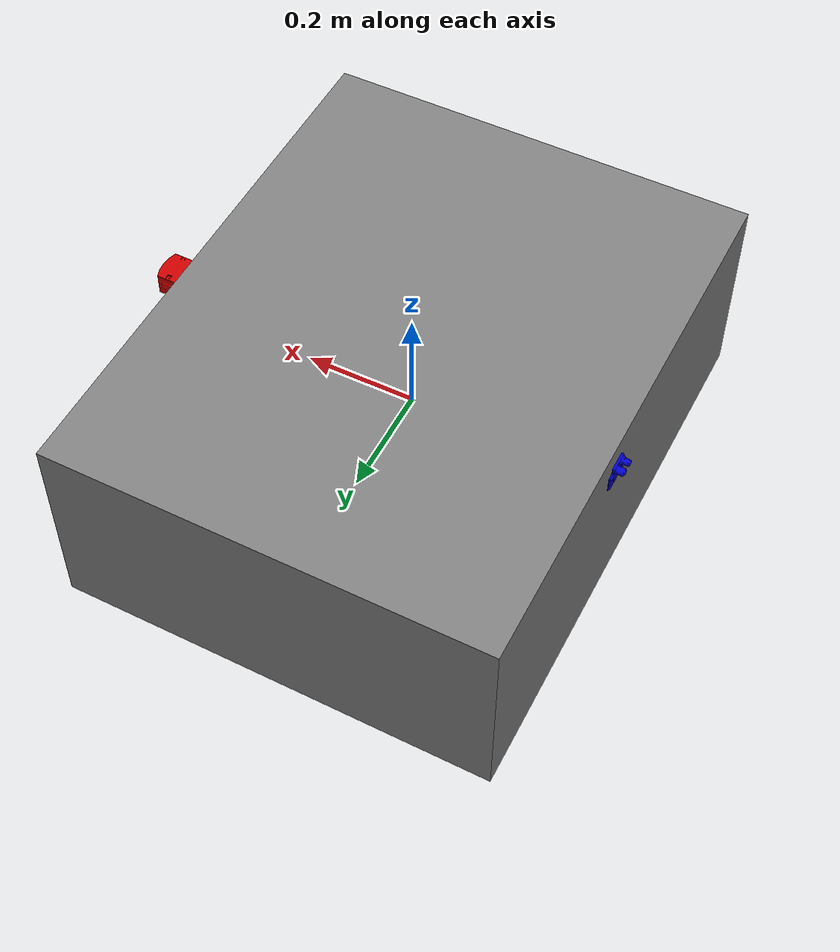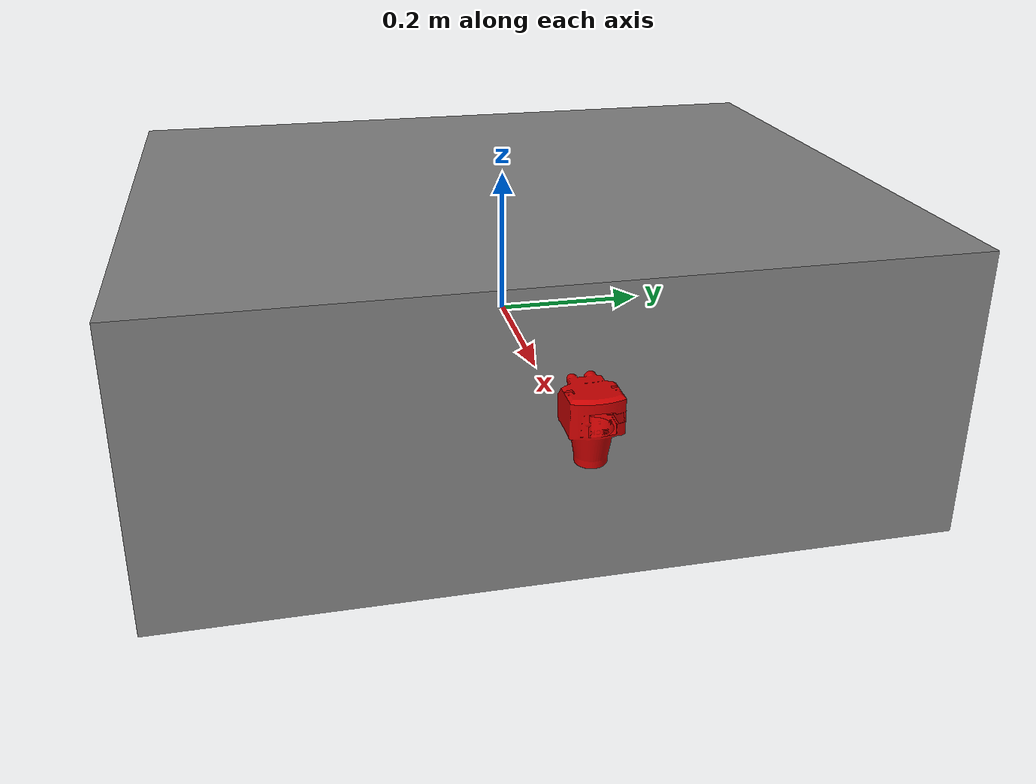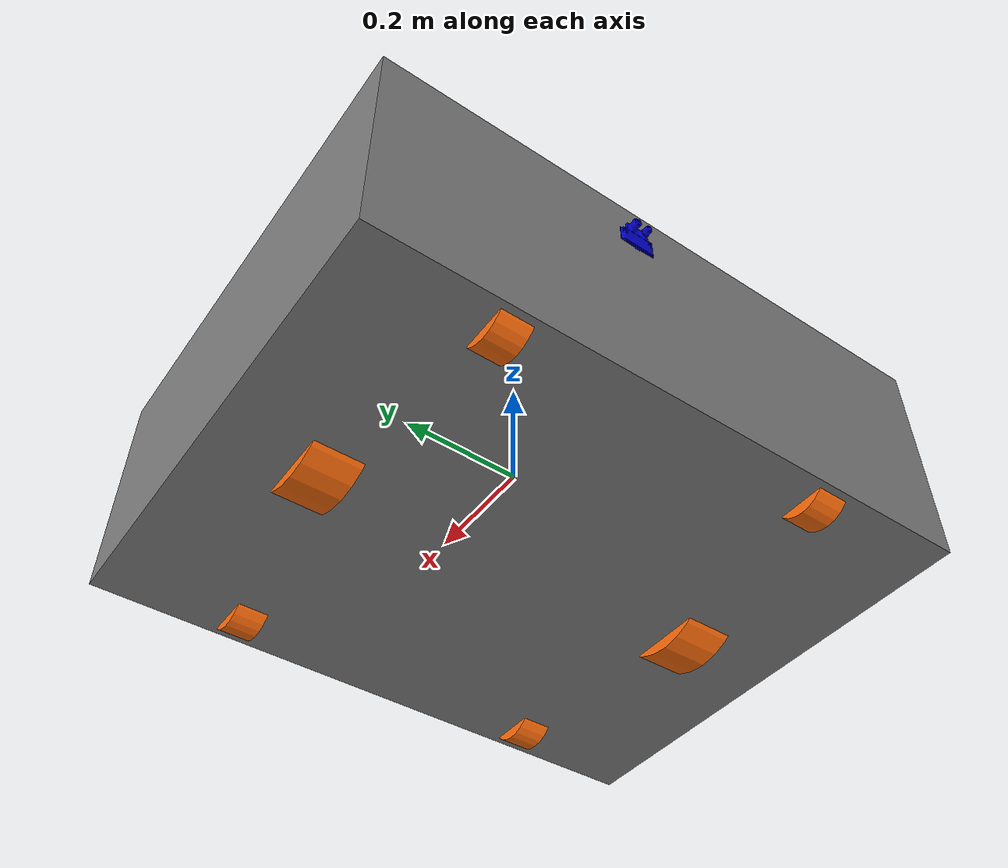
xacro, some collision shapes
<?xml version="1.0" ?>
<!-- |    This document was autogenerated by xacro from tway.urdf.xacro                | -->
<!-- |    EDITING THIS FILE BY HAND IS NOT RECOMMENDED                                 | -->
<robot name="tway" xmlns:xacro="http://ros.org/wiki/xacro">
  <!-- Init colour -->
  <material name="black">
    <color rgba="0.0 0.0 0.0 1.0"/>
  </material>
  <material name="dark">
    <color rgba="0.3 0.3 0.3 1.0"/>
  </material>
  <material name="light_black">
    <color rgba="0.4 0.4 0.4 1.0"/>
  </material>
  <material name="blue">
    <color rgba="0.0 0.0 0.8 1.0"/>
  </material>
  <material name="green">
    <color rgba="0.0 0.8 0.0 1.0"/>
  </material>
  <material name="grey">
    <color rgba="0.5 0.5 0.5 1.0"/>
  </material>
  <material name="orange">
    <color rgba="1.0 0.423529411765 0.0392156862745 1.0"/>
  </material>
  <material name="brown">
    <color rgba="0.870588235294 0.811764705882 0.764705882353 1.0"/>
  </material>
  <material name="red">
    <color rgba="0.8 0.0 0.0 1.0"/>
  </material>
  <material name="white">
    <color rgba="1.0 1.0 1.0 1.0"/>
  </material>
  <gazebo reference="base_link">
    <material>Gazebo/blue</material>
  </gazebo>
  <gazebo reference="wheel_left_link">
    <mu1>0.1</mu1>
    <!-- // Coefficient of friction in the range of 0..1    //-->
    <mu2>0.1</mu2>
    <!-- // Second Coefficient of friction in the range of 0..1    //-->
    <kp>500000.0e4</kp>
    <!-- // Dynamically "stiffness"-equivalent coefficient for contract joints    //-->
    <kd>10.0e2</kd>
    <!-- // Dynamically "damping"-equivalent coefficient for contact joints //-->
    <minDepth>0.001</minDepth>
    <!-- // Minimum allowable depth before contact correction impulse is applied //-->
    <maxVel>1</maxVel>
    <!-- // Maximum contact correction velocity truncation term  //-->
    <fdir1>1 0 0</fdir1>
    <!-- // 3-tuple specifying direction of mu1 in the collision local reference frame    //-->
    <material>Gazebo/FlatBlack</material>
  </gazebo>
  <gazebo reference="wheel_right_link">
    <mu1>0.1</mu1>
    <mu2>0.1</mu2>
    <kp>500000.0e4</kp>
    <kd>10.0e2</kd>
    <minDepth>0.001</minDepth>
    <maxVel>1</maxVel>
    <fdir1>1 0 0</fdir1>
    <material>Gazebo/FlatBlack</material>
  </gazebo>
  <gazebo reference="caster_back_right_link">
    <material>Gazebo/Grey</material>
  </gazebo>
  <gazebo reference="caster_back_left_link">
    <material>Gazebo/Grey</material>
  </gazebo>
  <gazebo reference="caster_front_left_link">
    <material>Gazebo/Grey</material>
  </gazebo>
  <gazebo reference="caster_front_right_link">
    <material>Gazebo/Grey</material>
  </gazebo>
  <gazebo reference="imu_link">
    <sensor name="imu" type="imu">
      <always_on>true</always_on>
      <visualize>false</visualize>
    </sensor>
    <material>Gazebo/Grey</material>
  </gazebo>
  <gazebo>
    <plugin filename="libgazebo_ros_diff_drive.so" name="tway_controller">
      <!-- //Library file   //-->
      <commandTopic>cmd_vel</commandTopic>
      <odometryTopic>odom</odometryTopic>
      <odometryFrame>odom</odometryFrame>
      <robotBaseFrame>base_footprint</robotBaseFrame>
      <publishWheelTF>false</publishWheelTF>
      <publishTf>true</publishTf>
      <publishWheelJointState>true</publishWheelJointState>
      <legacyMode>false</legacyMode>
      <updateRate>30</updateRate>
      <leftJoint>wheel_left_joint</leftJoint>
      <rightJoint>wheel_right_joint</rightJoint>
      <wheelSeparation>0.64</wheelSeparation>
      <!-- // Distance between 2 active wheels    //-->
      <wheelDiameter>0.22</wheelDiameter>
      <!-- // Diameter of 2 active wheels   //-->
      <wheelAcceleration>10</wheelAcceleration>
      <wheelTorque>5000</wheelTorque>
      <!-- // Wheel Torque   //-->
      <rosDebugLevel>na</rosDebugLevel>
    </plugin>
  </gazebo>
  <gazebo>
    <plugin filename="libgazebo_ros_imu.so" name="imu_plugin">
      <alwaysOn>true</alwaysOn>
      <bodyName>imu_link</bodyName>
      <topicName>imu</topicName>
      <serviceName>imu_service</serviceName>
      <gaussianNoise>0.0</gaussianNoise>
      <updateRate>200</updateRate>
      <imu>
        <noise>
          <type>gaussian</type>
          <rate>
            <mean>0.0</mean>
            <stddev>2e-4</stddev>
            <bias_mean>0.0000075</bias_mean>
            <bias_stddev>0.0000008</bias_stddev>
          </rate>
          <accel>
            <mean>0.0</mean>
            <stddev>1.7e-2</stddev>
            <bias_mean>0.1</bias_mean>
            <bias_stddev>0.001</bias_stddev>
          </accel>
        </noise>
      </imu>
    </plugin>
  </gazebo>
  <gazebo reference="laser">
    <material>Gazebo/Red</material>
    <sensor name="lds_lfcd_sensor" type="ray">
      <pose>0 0 0 0 0 0</pose>
      <!-- //a position and orientation with respect to the specified frame //-->
      <visualize>true</visualize>
      <!-- //show laser lines or not //-->
      <ray>
        <scan>
          <horizontal>
            <samples>240</samples>
            <!-- //the number of simulated rays to generate per complete laser sweep cycle//-->
            <resolution>1</resolution>
            <!-- //This number is multiplied by samples to determine the number of range data points returned. -->
            <!-- If the resolution is less than one, range data is interpolated. -->
            <!--If resolution is greater than one, range data is averaged//-->
            <min_angle>-1.5</min_angle>
            <max_angle>1.5</max_angle>
          </horizontal>
        </scan>
        <range>
          <!-- //Range of LiDAR//-->
          <min>0.120</min>
          <max>10.5</max>
          <resolution>0.015</resolution>
        </range>
        <noise>
          <type>gaussian</type>
          <mean>0.0</mean>
          <stddev>0.01</stddev>
        </noise>
      </ray>
      <plugin filename="libgazebo_ros_laser.so" name="gazebo_ros_lds_lfcd_controller">
        <topicName>scan</topicName>
        <frameName>laser</frameName>
        <update_rate>1800</update_rate>
      </plugin>
    </sensor>
  </gazebo>
  <gazebo reference="camera_rgb_frame">
    <sensor name="realsense_R200" type="depth">
      <always_on>true</always_on>
      <visualize>false</visualize>
      <camera>
        <horizontal_fov>1.3439</horizontal_fov>
        <image>
          <width>1920</width>
          <height>1080</height>
          <format>R8G8B8</format>
        </image>
        <depth_camera/>
        <clip>
          <near>0.03</near>
          <far>100</far>
        </clip>
      </camera>
      <plugin filename="libgazebo_ros_openni_kinect.so" name="camera_controller">
        <baseline>0.2</baseline>
        <alwaysOn>true</alwaysOn>
        <updateRate>30.0</updateRate>
        <cameraName>camera</cameraName>
        <frameName>camera_rgb_optical_frame</frameName>
        <imageTopicName>rgb/image_raw</imageTopicName>
        <depthImageTopicName>depth/image_raw</depthImageTopicName>
        <pointCloudTopicName>depth/points</pointCloudTopicName>
        <cameraInfoTopicName>rgb/camera_info</cameraInfoTopicName>
        <depthImageCameraInfoTopicName>depth/camera_info</depthImageCameraInfoTopicName>
        <pointCloudCutoff>0.4</pointCloudCutoff>
        <hackBaseline>0.07</hackBaseline>
        <distortionK1>0.0</distortionK1>
        <distortionK2>0.0</distortionK2>
        <distortionK3>0.0</distortionK3>
        <distortionT1>0.0</distortionT1>
        <distortionT2>0.0</distortionT2>
        <CxPrime>0.0</CxPrime>
        <Cx>0.0</Cx>
        <Cy>0.0</Cy>
        <focalLength>0</focalLength>
        <hackBaseline>0</hackBaseline>
      </plugin>
    </sensor>
  </gazebo>
  <!--First, we have to Describe Tway Base (body) and its foot print -->
  <link name="base_footprint"/>
  <joint name="base_joint" type="fixed">
    <parent link="base_footprint"/>
    <child link="base_link"/>
    <origin rpy="0 0 0" xyz="0 0 0.0"/>
  </joint>
  <link name="base_link">
    <visual>
      <origin rpy="1.57 0 0" xyz="-0.52 0.82 -0.40"/>
      <!-- body position only -->
      <geometry>
        <mesh filename="package://tway_description/meshes/bases/tway_base.stl" scale="0.001 0.001 0.001"/>
      </geometry>
      <material name="grey"/>
    </visual>
    <collision>
      <origin rpy="0 0 0" xyz="0 0 0"/>
      <!-- no effect -->
      <geometry>
        <box size="0.8 1.0 0.38"/>
      </geometry>
    </collision>
    <inertial>
      <origin rpy="0 0 0" xyz="0 0 0"/>
      <mass value="300e+00"/>
      <inertia ixx="19.61" ixy="-4.7576583e-05" ixz="1.1160499e-04" iyy="28.61" iyz="-3.5422299e-06" izz="41"/>
    </inertial>
  </link>
  <!-- //////////////////////Wheel part. Tway has 2 Wheels /////////////////////////-->
  <!--Second, We describe Left and Right Wheel  -->
  <joint name="wheel_left_joint" type="continuous">
    <parent link="base_link"/>
    <child link="wheel_left_link"/>
    <origin rpy="-1.57 0 0" xyz="0.0 -0.3315 -0.1"/>
    <axis xyz="0 0 1"/>
  </joint>
  <link name="wheel_left_link">
    <visual>
      <origin rpy="0 0 0" xyz="0 0 0"/>
      <geometry>
        <cylinder length="0.08" radius="0.11"/>
      </geometry>
      <material name="orange"/>
    </visual>
    <collision>
      <origin rpy="0 0 0" xyz="0 0.0 0"/>
      <geometry>
        <cylinder length="0.08" radius="0.11"/>
      </geometry>
    </collision>
    <inertial>
      <origin xyz="0 0 0"/>
      <mass value="21"/>
      <inertia ixx="0.154" ixy="-4.2369783e-8" ixz="-5.9381719e-07" iyy="0.056" iyz="-1.4400107e-8" izz="0.132"/>
    </inertial>
  </link>
  <joint name="wheel_right_joint" type="continuous">
    <parent link="base_link"/>
    <child link="wheel_right_link"/>
    <origin rpy="-1.57 0 0" xyz="0.0 0.3315 -0.1"/>
    <axis xyz="0 0 1"/>
  </joint>
  <link name="wheel_right_link">
    <visual>
      <origin rpy="0 0 0" xyz="0 0 0"/>
      <geometry>
        <cylinder length="0.08" radius="0.11"/>
      </geometry>
      <material name="orange"/>
    </visual>
    <collision>
      <origin rpy="0 0 0" xyz="0 0.0 0"/>
      <geometry>
        <cylinder length="0.08" radius="0.11"/>
      </geometry>
    </collision>
    <inertial>
      <origin xyz="0 0 0"/>
      <mass value="21"/>
      <inertia ixx="0.154" ixy="-4.2369783e-8" ixz="-5.9381719e-07" iyy="0.056" iyz="-1.4400107e-8" izz="0.132"/>
    </inertial>
  </link>
  <!-- //////////////////////CARTER part. Tway has 4 CARTERS /////////////////////////-->
  <joint name="caster_back_right_joint" type="fixed">
    <parent link="base_link"/>
    <child link="caster_back_right_link"/>
    <origin rpy="1.57 0 0" xyz="0.35 0.27 -0.158"/>
    <axis xyz="0 0 1"/>
  </joint>
  <link name="caster_back_right_link">
    <visual>
      <origin rpy="0 0 0" xyz="0 0 0"/>
      <geometry>
        <cylinder length="0.05" radius="0.05"/>
      </geometry>
      <material name="orange"/>
    </visual>
    <collision>
      <origin rpy="0 0 0" xyz="0 0.0 0"/>
      <geometry>
        <cylinder length="0.05" radius="0.05"/>
      </geometry>
      <material name="red"/>
    </collision>
    <inertial>
      <origin xyz="0 0 0"/>
      <mass value="1"/>
      <inertia ixx="0.1" ixy="0.0" ixz="0.0" iyy="0.1" iyz="0.0" izz="0.1"/>
    </inertial>
  </link>
  <joint name="caster_back_left_joint" type="fixed">
    <parent link="base_link"/>
    <child link="caster_back_left_link"/>
    <origin rpy="1.57 0 0" xyz="0.35 -0.27 -0.158 "/>
    <axis xyz="0 0 1"/>
  </joint>
  <link name="caster_back_left_link">
    <visual>
      <origin rpy="0 0 0" xyz="0 0 0"/>
      <geometry>
        <cylinder length="0.05" radius="0.05"/>
      </geometry>
      <material name="orange"/>
    </visual>
    <collision>
      <origin rpy="0 0 0" xyz="0 0.0 0"/>
      <geometry>
        <cylinder length="0.05" radius="0.05"/>
      </geometry>
      <material name="blue"/>
    </collision>
    <inertial>
      <origin xyz="0 0 0"/>
      <mass value="1"/>
      <inertia ixx="0.1" ixy="0.0" ixz="0.0" iyy="0.1" iyz="0.0" izz="0.1"/>
    </inertial>
  </link>
  <joint name="caster_front_right_joint" type="fixed">
    <parent link="base_link"/>
    <child link="caster_front_right_link"/>
    <origin rpy="1.57 0 0" xyz="-0.35 0.27 -0.158"/>
    <axis xyz="0 0 1"/>
  </joint>
  <link name="caster_front_right_link">
    <visual>
      <origin rpy="0 0 0" xyz="0 0 0"/>
      <geometry>
        <cylinder length="0.05" radius="0.05"/>
      </geometry>
      <material name="orange"/>
    </visual>
    <collision>
      <origin rpy="0 0 0" xyz="0 0.0 0"/>
      <geometry>
        <cylinder length="0.05" radius="0.05"/>
      </geometry>
      <material name="red"/>
    </collision>
    <inertial>
      <origin xyz="0 0 0"/>
      <mass value="1"/>
      <inertia ixx="0.1" ixy="0.0" ixz="0.0" iyy="0.1" iyz="0.0" izz="0.1"/>
    </inertial>
  </link>
  <joint name="caster_front_left_joint" type="fixed">
    <parent link="base_link"/>
    <child link="caster_front_left_link"/>
    <origin rpy="1.57 0 0" xyz="-0.35 -0.27 -0.158"/>
    <axis xyz="0 0 1"/>
  </joint>
  <link name="caster_front_left_link">
    <visual>
      <origin rpy="0 0 0" xyz="0 0 0"/>
      <geometry>
        <cylinder length="0.05" radius="0.05"/>
      </geometry>
      <material name="orange"/>
    </visual>
    <collision>
      <origin rpy="0 0 0" xyz="0 0.0 0"/>
      <geometry>
        <cylinder length="0.05" radius="0.05"/>
      </geometry>
      <material name="blue"/>
    </collision>
    <inertial>
      <origin xyz="0 0 0"/>
      <mass value="1"/>
      <inertia ixx="0.1" ixy="0.0" ixz="0.0" iyy="0.1" iyz="0.0" izz="0.1"/>
    </inertial>
  </link>
  <joint name="imu_joint" type="fixed">
    <parent link="base_link"/>
    <child link="imu_link"/>
    <origin rpy="0 0 0" xyz="-0.032 0 0.068"/>
  </joint>
  <link name="imu_link"/>
  <joint name="scan_joint" type="fixed">
    <parent link="base_link"/>
    <child link="laser"/>
    <origin rpy="0 0 0" xyz="0.42 -0.035 0.1"/>
  </joint>
  <link name="laser">
    <visual>
      <origin rpy="-1.57 0 0" xyz="0 0 0"/>
      <geometry>
        <mesh filename="package://tway_description/meshes/sensors/sick551.stl" scale="0.001 0.001 0.001"/>
      </geometry>
      <material name="red"/>
    </visual>
    <collision>
      <origin rpy="0 0 0" xyz="0 0 0"/>
      <geometry>
        <cylinder length="0.0315" radius="0.055"/>
      </geometry>
    </collision>
    <inertial>
      <mass value="0.114"/>
      <origin xyz="0 0 0"/>
      <inertia ixx="0.001" ixy="0.0" ixz="0.0" iyy="0.001" iyz="0.0" izz="0.001"/>
    </inertial>
  </link>
  <joint name="scan_joint_back" type="fixed">
    <parent link="base_link"/>
    <child link="base_scan_back"/>
    <origin rpy="0 0 3.1459" xyz="-0.42 0.035 0.15"/>
  </joint>
  <link name="base_scan_back">
    <visual>
      <origin rpy="-1.57 0 3.14" xyz="0 0.0 0.0"/>
      <geometry>
        <mesh filename="package://tway_description/meshes/sensors/sick551.stl" scale="0.001 0.001 0.001"/>
      </geometry>
      <material name="blue"/>
    </visual>
    <collision>
      <origin rpy="0 0 0" xyz="0 0 0"/>
      <geometry>
        <cylinder length="0.0315" radius="0.055"/>
      </geometry>
    </collision>
    <inertial>
      <mass value="0.114"/>
      <origin xyz="0 0 0"/>
      <inertia ixx="0.001" ixy="0.0" ixz="0.0" iyy="0.001" iyz="0.0" izz="0.001"/>
    </inertial>
  </link>
</robot>
